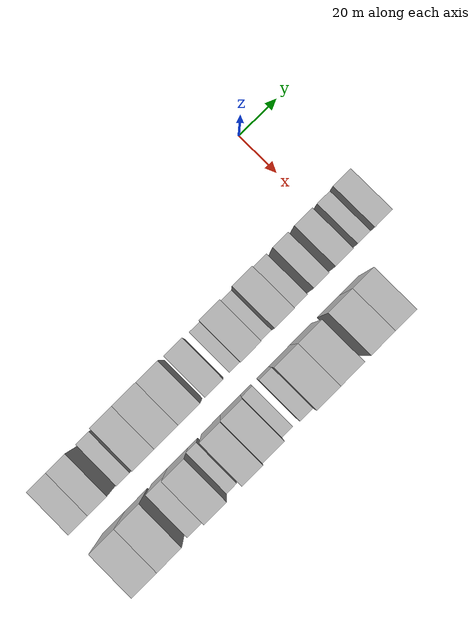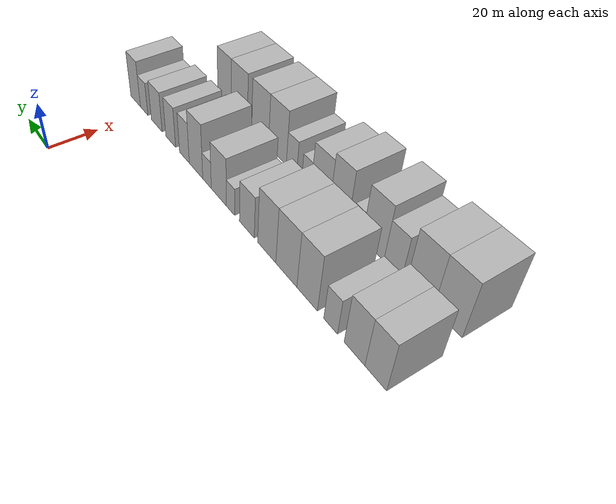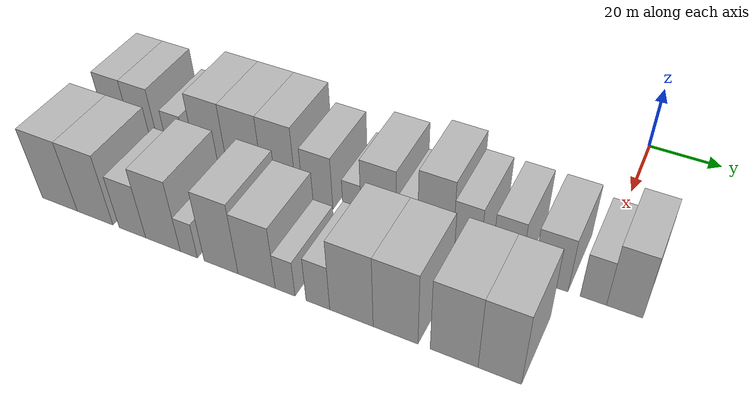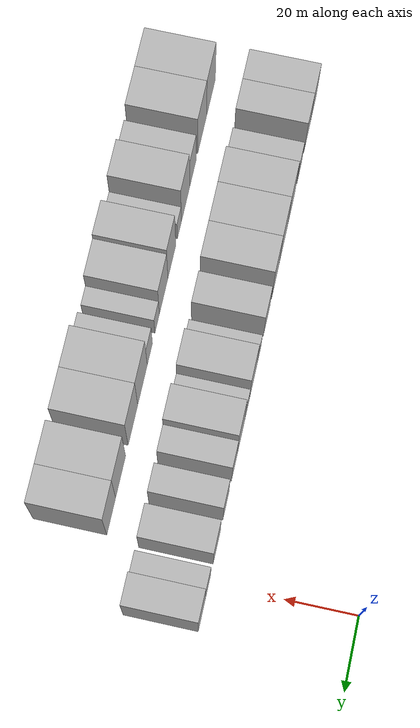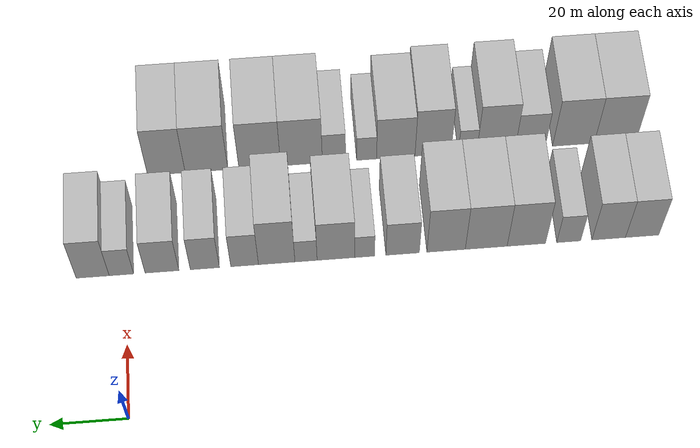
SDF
<sdf version="1.6">
 <world name="default">
  <model name="building_15">
   <static>1</static>
   <pose>50.0000 -136.8504 0 0.000000 0.000000 0.000000</pose>
   <link name="link">
    <pose>0 0 10.50 0 0 0</pose>
    <collision name="collision"><geometry><box><size>20.0000 8.9223 21.0000</size></box></geometry></collision>
    <visual name="visual">
     <cast_shadows>0</cast_shadows>
     <geometry><box><size>20.0000 8.9223 21.0000</size></box></geometry>
     <material>
      <script>
       <uri>model://HANNAS_wall/materials/scripts</uri>
       <uri>model://HANNAS_wall/materials/textures</uri>
       <name>vrc/HANNAS_wall</name>
      </script>
     </material>
    </visual>
   </link>
  </model>
  <model name="building_16">
   <static>1</static>
   <pose>50.0000 -127.8862 0 0.000000 0.000000 0.000000</pose>
   <link name="link">
    <pose>0 0 10.50 0 0 0</pose>
    <collision name="collision"><geometry><box><size>20.0000 9.0061 21.0000</size></box></geometry></collision>
    <visual name="visual">
     <cast_shadows>0</cast_shadows>
     <geometry><box><size>20.0000 9.0061 21.0000</size></box></geometry>
     <material>
      <script>
       <uri>model://HANNAS_wall/materials/scripts</uri>
       <uri>model://HANNAS_wall/materials/textures</uri>
       <name>vrc/HANNAS_wall</name>
      </script>
     </material>
    </visual>
   </link>
  </model>
  <model name="building_17">
   <static>1</static>
   <pose>50.0000 -117.1879 0 0.000000 0.000000 0.000000</pose>
   <link name="link">
    <pose>0 0 7.50 0 0 0</pose>
    <collision name="collision"><geometry><box><size>20.0000 6.3906 15.0000</size></box></geometry></collision>
    <visual name="visual">
     <cast_shadows>0</cast_shadows>
     <geometry><box><size>20.0000 6.3906 15.0000</size></box></geometry>
     <material>
      <script>
       <uri>model://HANNAS_wall/materials/scripts</uri>
       <uri>model://HANNAS_wall/materials/textures</uri>
       <name>vrc/HANNAS_wall</name>
      </script>
     </material>
    </visual>
   </link>
  </model>
  <model name="building_18">
   <static>1</static>
   <pose>50.0000 -105.8745 0 0.000000 0.000000 0.000000</pose>
   <link name="link">
    <pose>0 0 12.00 0 0 0</pose>
    <collision name="collision"><geometry><box><size>20.0000 10.2362 24.0000</size></box></geometry></collision>
    <visual name="visual">
     <cast_shadows>0</cast_shadows>
     <geometry><box><size>20.0000 10.2362 24.0000</size></box></geometry>
     <material>
      <script>
       <uri>model://HANNAS_wall/materials/scripts</uri>
       <uri>model://HANNAS_wall/materials/textures</uri>
       <name>vrc/HANNAS_wall</name>
      </script>
     </material>
    </visual>
   </link>
  </model>
  <model name="building_19">
   <static>1</static>
   <pose>50.0000 -95.1828 0 0.000000 0.000000 0.000000</pose>
   <link name="link">
    <pose>0 0 12.00 0 0 0</pose>
    <collision name="collision"><geometry><box><size>20.0000 11.1471 24.0000</size></box></geometry></collision>
    <visual name="visual">
     <cast_shadows>0</cast_shadows>
     <geometry><box><size>20.0000 11.1471 24.0000</size></box></geometry>
     <material>
      <script>
       <uri>model://HANNAS_wall/materials/scripts</uri>
       <uri>model://HANNAS_wall/materials/textures</uri>
       <name>vrc/HANNAS_wall</name>
      </script>
     </material>
    </visual>
   </link>
  </model>
  <model name="building_20">
   <static>1</static>
   <pose>50.0000 -84.5005 0 0.000000 0.000000 0.000000</pose>
   <link name="link">
    <pose>0 0 12.00 0 0 0</pose>
    <collision name="collision"><geometry><box><size>20.0000 10.2175 24.0000</size></box></geometry></collision>
    <visual name="visual">
     <cast_shadows>0</cast_shadows>
     <geometry><box><size>20.0000 10.2175 24.0000</size></box></geometry>
     <material>
      <script>
       <uri>model://HANNAS_wall/materials/scripts</uri>
       <uri>model://HANNAS_wall/materials/textures</uri>
       <name>vrc/HANNAS_wall</name>
      </script>
     </material>
    </visual>
   </link>
  </model>
  <model name="building_21">
   <static>1</static>
   <pose>50.0000 -72.9549 0 0.000000 0.000000 0.000000</pose>
   <link name="link">
    <pose>0 0 9.00 0 0 0</pose>
    <collision name="collision"><geometry><box><size>20.0000 8.8736 18.0000</size></box></geometry></collision>
    <visual name="visual">
     <cast_shadows>0</cast_shadows>
     <geometry><box><size>20.0000 8.8736 18.0000</size></box></geometry>
     <material>
      <script>
       <uri>model://HANNAS_wall/materials/scripts</uri>
       <uri>model://HANNAS_wall/materials/textures</uri>
       <name>vrc/HANNAS_wall</name>
      </script>
     </material>
    </visual>
   </link>
  </model>
  <model name="building_22">
   <static>1</static>
   <pose>50.0000 -62.8980 0 0.000000 0.000000 0.000000</pose>
   <link name="link">
    <pose>0 0 6.00 0 0 0</pose>
    <collision name="collision"><geometry><box><size>20.0000 5.2403 12.0000</size></box></geometry></collision>
    <visual name="visual">
     <cast_shadows>0</cast_shadows>
     <geometry><box><size>20.0000 5.2403 12.0000</size></box></geometry>
     <material>
      <script>
       <uri>model://HANNAS_wall/materials/scripts</uri>
       <uri>model://HANNAS_wall/materials/textures</uri>
       <name>vrc/HANNAS_wall</name>
      </script>
     </material>
    </visual>
   </link>
  </model>
  <model name="building_23">
   <static>1</static>
   <pose>50.0000 -55.2958 0 0.000000 0.000000 0.000000</pose>
   <link name="link">
    <pose>0 0 10.50 0 0 0</pose>
    <collision name="collision"><geometry><box><size>20.0000 9.9641 21.0000</size></box></geometry></collision>
    <visual name="visual">
     <cast_shadows>0</cast_shadows>
     <geometry><box><size>20.0000 9.9641 21.0000</size></box></geometry>
     <material>
      <script>
       <uri>model://HANNAS_wall/materials/scripts</uri>
       <uri>model://HANNAS_wall/materials/textures</uri>
       <name>vrc/HANNAS_wall</name>
      </script>
     </material>
    </visual>
   </link>
  </model>
  <model name="building_24">
   <static>1</static>
   <pose>50.0000 -47.3811 0 0.000000 0.000000 0.000000</pose>
   <link name="link">
    <pose>0 0 6.00 0 0 0</pose>
    <collision name="collision"><geometry><box><size>20.0000 5.8652 12.0000</size></box></geometry></collision>
    <visual name="visual">
     <cast_shadows>0</cast_shadows>
     <geometry><box><size>20.0000 5.8652 12.0000</size></box></geometry>
     <material>
      <script>
       <uri>model://HANNAS_wall/materials/scripts</uri>
       <uri>model://HANNAS_wall/materials/textures</uri>
       <name>vrc/HANNAS_wall</name>
      </script>
     </material>
    </visual>
   </link>
  </model>
  <model name="building_25">
   <static>1</static>
   <pose>50.0000 -39.6424 0 0.000000 0.000000 0.000000</pose>
   <link name="link">
    <pose>0 0 12.00 0 0 0</pose>
    <collision name="collision"><geometry><box><size>20.0000 9.6122 24.0000</size></box></geometry></collision>
    <visual name="visual">
     <cast_shadows>0</cast_shadows>
     <geometry><box><size>20.0000 9.6122 24.0000</size></box></geometry>
     <material>
      <script>
       <uri>model://HANNAS_wall/materials/scripts</uri>
       <uri>model://HANNAS_wall/materials/textures</uri>
       <name>vrc/HANNAS_wall</name>
      </script>
     </material>
    </visual>
   </link>
  </model>
  <model name="building_26">
   <static>1</static>
   <pose>50.0000 -31.1935 0 0.000000 0.000000 0.000000</pose>
   <link name="link">
    <pose>0 0 9.00 0 0 0</pose>
    <collision name="collision"><geometry><box><size>20.0000 7.2858 18.0000</size></box></geometry></collision>
    <visual name="visual">
     <cast_shadows>0</cast_shadows>
     <geometry><box><size>20.0000 7.2858 18.0000</size></box></geometry>
     <material>
      <script>
       <uri>model://HANNAS_wall/materials/scripts</uri>
       <uri>model://HANNAS_wall/materials/textures</uri>
       <name>vrc/HANNAS_wall</name>
      </script>
     </material>
    </visual>
   </link>
  </model>
  <model name="building_27">
   <static>1</static>
   <pose>50.0000 -20.7220 0 0.000000 0.000000 0.000000</pose>
   <link name="link">
    <pose>0 0 9.00 0 0 0</pose>
    <collision name="collision"><geometry><box><size>20.0000 7.6572 18.0000</size></box></geometry></collision>
    <visual name="visual">
     <cast_shadows>0</cast_shadows>
     <geometry><box><size>20.0000 7.6572 18.0000</size></box></geometry>
     <material>
      <script>
       <uri>model://HANNAS_wall/materials/scripts</uri>
       <uri>model://HANNAS_wall/materials/textures</uri>
       <name>vrc/HANNAS_wall</name>
      </script>
     </material>
    </visual>
   </link>
  </model>
  <model name="building_28">
   <static>1</static>
   <pose>50.0000 -9.4502 0 0.000000 0.000000 0.000000</pose>
   <link name="link">
    <pose>0 0 9.00 0 0 0</pose>
    <collision name="collision"><geometry><box><size>20.0000 8.8863 18.0000</size></box></geometry></collision>
    <visual name="visual">
     <cast_shadows>0</cast_shadows>
     <geometry><box><size>20.0000 8.8863 18.0000</size></box></geometry>
     <material>
      <script>
       <uri>model://HANNAS_wall/materials/scripts</uri>
       <uri>model://HANNAS_wall/materials/textures</uri>
       <name>vrc/HANNAS_wall</name>
      </script>
     </material>
    </visual>
   </link>
  </model>
  <model name="building_29">
   <static>1</static>
   <pose>50.0000 1.1949 0 0.000000 0.000000 0.000000</pose>
   <link name="link">
    <pose>0 0 7.50 0 0 0</pose>
    <collision name="collision"><geometry><box><size>20.0000 6.4039 15.0000</size></box></geometry></collision>
    <visual name="visual">
     <cast_shadows>0</cast_shadows>
     <geometry><box><size>20.0000 6.4039 15.0000</size></box></geometry>
     <material>
      <script>
       <uri>model://HANNAS_wall/materials/scripts</uri>
       <uri>model://HANNAS_wall/materials/textures</uri>
       <name>vrc/HANNAS_wall</name>
      </script>
     </material>
    </visual>
   </link>
  </model>
  <model name="building_30">
   <static>1</static>
   <pose>50.0000 8.7194 0 0.000000 0.000000 0.000000</pose>
   <link name="link">
    <pose>0 0 10.50 0 0 0</pose>
    <collision name="collision"><geometry><box><size>20.0000 8.6451 21.0000</size></box></geometry></collision>
    <visual name="visual">
     <cast_shadows>0</cast_shadows>
     <geometry><box><size>20.0000 8.6451 21.0000</size></box></geometry>
     <material>
      <script>
       <uri>model://HANNAS_wall/materials/scripts</uri>
       <uri>model://HANNAS_wall/materials/textures</uri>
       <name>vrc/HANNAS_wall</name>
      </script>
     </material>
    </visual>
   </link>
  </model>
  <model name="building_77">
   <static>1</static>
   <pose>79.0000 -134.0732 0 0.000000 0.000000 0.000000</pose>
   <link name="link">
    <pose>0 0 12.00 0 0 0</pose>
    <collision name="collision"><geometry><box><size>20.0000 11.5784 24.0000</size></box></geometry></collision>
    <visual name="visual">
     <cast_shadows>0</cast_shadows>
     <geometry><box><size>20.0000 11.5784 24.0000</size></box></geometry>
     <material>
      <script>
       <uri>model://HANNAS_wall/materials/scripts</uri>
       <uri>model://HANNAS_wall/materials/textures</uri>
       <name>vrc/HANNAS_wall</name>
      </script>
     </material>
    </visual>
   </link>
  </model>
  <model name="building_78">
   <static>1</static>
   <pose>79.0000 -122.5423 0 0.000000 0.000000 0.000000</pose>
   <link name="link">
    <pose>0 0 12.00 0 0 0</pose>
    <collision name="collision"><geometry><box><size>20.0000 11.4833 24.0000</size></box></geometry></collision>
    <visual name="visual">
     <cast_shadows>0</cast_shadows>
     <geometry><box><size>20.0000 11.4833 24.0000</size></box></geometry>
     <material>
      <script>
       <uri>model://HANNAS_wall/materials/scripts</uri>
       <uri>model://HANNAS_wall/materials/textures</uri>
       <name>vrc/HANNAS_wall</name>
      </script>
     </material>
    </visual>
   </link>
  </model>
  <model name="building_79">
   <static>1</static>
   <pose>79.0000 -110.6660 0 0.000000 0.000000 0.000000</pose>
   <link name="link">
    <pose>0 0 9.00 0 0 0</pose>
    <collision name="collision"><geometry><box><size>20.0000 8.2694 18.0000</size></box></geometry></collision>
    <visual name="visual">
     <cast_shadows>0</cast_shadows>
     <geometry><box><size>20.0000 8.2694 18.0000</size></box></geometry>
     <material>
      <script>
       <uri>model://HANNAS_wall/materials/scripts</uri>
       <uri>model://HANNAS_wall/materials/textures</uri>
       <name>vrc/HANNAS_wall</name>
      </script>
     </material>
    </visual>
   </link>
  </model>
  <model name="building_80">
   <static>1</static>
   <pose>79.0000 -101.2624 0 0.000000 0.000000 0.000000</pose>
   <link name="link">
    <pose>0 0 12.00 0 0 0</pose>
    <collision name="collision"><geometry><box><size>20.0000 10.5377 24.0000</size></box></geometry></collision>
    <visual name="visual">
     <cast_shadows>0</cast_shadows>
     <geometry><box><size>20.0000 10.5377 24.0000</size></box></geometry>
     <material>
      <script>
       <uri>model://HANNAS_wall/materials/scripts</uri>
       <uri>model://HANNAS_wall/materials/textures</uri>
       <name>vrc/HANNAS_wall</name>
      </script>
     </material>
    </visual>
   </link>
  </model>
  <model name="building_81">
   <static>1</static>
   <pose>79.0000 -93.4515 0 0.000000 0.000000 0.000000</pose>
   <link name="link">
    <pose>0 0 6.00 0 0 0</pose>
    <collision name="collision"><geometry><box><size>20.0000 5.0841 12.0000</size></box></geometry></collision>
    <visual name="visual">
     <cast_shadows>0</cast_shadows>
     <geometry><box><size>20.0000 5.0841 12.0000</size></box></geometry>
     <material>
      <script>
       <uri>model://HANNAS_wall/materials/scripts</uri>
       <uri>model://HANNAS_wall/materials/textures</uri>
       <name>vrc/HANNAS_wall</name>
      </script>
     </material>
    </visual>
   </link>
  </model>
  <model name="building_82">
   <static>1</static>
   <pose>79.0000 -83.9888 0 0.000000 0.000000 0.000000</pose>
   <link name="link">
    <pose>0 0 12.00 0 0 0</pose>
    <collision name="collision"><geometry><box><size>20.0000 9.8413 24.0000</size></box></geometry></collision>
    <visual name="visual">
     <cast_shadows>0</cast_shadows>
     <geometry><box><size>20.0000 9.8413 24.0000</size></box></geometry>
     <material>
      <script>
       <uri>model://HANNAS_wall/materials/scripts</uri>
       <uri>model://HANNAS_wall/materials/textures</uri>
       <name>vrc/HANNAS_wall</name>
      </script>
     </material>
    </visual>
   </link>
  </model>
  <model name="building_83">
   <static>1</static>
   <pose>79.0000 -73.8246 0 0.000000 0.000000 0.000000</pose>
   <link name="link">
    <pose>0 0 10.50 0 0 0</pose>
    <collision name="collision"><geometry><box><size>20.0000 10.4871 21.0000</size></box></geometry></collision>
    <visual name="visual">
     <cast_shadows>0</cast_shadows>
     <geometry><box><size>20.0000 10.4871 21.0000</size></box></geometry>
     <material>
      <script>
       <uri>model://HANNAS_wall/materials/scripts</uri>
       <uri>model://HANNAS_wall/materials/textures</uri>
       <name>vrc/HANNAS_wall</name>
      </script>
     </material>
    </visual>
   </link>
  </model>
  <model name="building_84">
   <static>1</static>
   <pose>79.0000 -65.8677 0 0.000000 0.000000 0.000000</pose>
   <link name="link">
    <pose>0 0 6.00 0 0 0</pose>
    <collision name="collision"><geometry><box><size>20.0000 5.4267 12.0000</size></box></geometry></collision>
    <visual name="visual">
     <cast_shadows>0</cast_shadows>
     <geometry><box><size>20.0000 5.4267 12.0000</size></box></geometry>
     <material>
      <script>
       <uri>model://HANNAS_wall/materials/scripts</uri>
       <uri>model://HANNAS_wall/materials/textures</uri>
       <name>vrc/HANNAS_wall</name>
      </script>
     </material>
    </visual>
   </link>
  </model>
  <model name="building_85">
   <static>1</static>
   <pose>79.0000 -56.9861 0 0.000000 0.000000 0.000000</pose>
   <link name="link">
    <pose>0 0 7.50 0 0 0</pose>
    <collision name="collision"><geometry><box><size>20.0000 6.3366 15.0000</size></box></geometry></collision>
    <visual name="visual">
     <cast_shadows>0</cast_shadows>
     <geometry><box><size>20.0000 6.3366 15.0000</size></box></geometry>
     <material>
      <script>
       <uri>model://HANNAS_wall/materials/scripts</uri>
       <uri>model://HANNAS_wall/materials/textures</uri>
       <name>vrc/HANNAS_wall</name>
      </script>
     </material>
    </visual>
   </link>
  </model>
  <model name="building_86">
   <static>1</static>
   <pose>79.0000 -48.1402 0 0.000000 0.000000 0.000000</pose>
   <link name="link">
    <pose>0 0 12.00 0 0 0</pose>
    <collision name="collision"><geometry><box><size>20.0000 11.3552 24.0000</size></box></geometry></collision>
    <visual name="visual">
     <cast_shadows>0</cast_shadows>
     <geometry><box><size>20.0000 11.3552 24.0000</size></box></geometry>
     <material>
      <script>
       <uri>model://HANNAS_wall/materials/scripts</uri>
       <uri>model://HANNAS_wall/materials/textures</uri>
       <name>vrc/HANNAS_wall</name>
      </script>
     </material>
    </visual>
   </link>
  </model>
  <model name="building_87">
   <static>1</static>
   <pose>79.0000 -36.8027 0 0.000000 0.000000 0.000000</pose>
   <link name="link">
    <pose>0 0 12.00 0 0 0</pose>
    <collision name="collision"><geometry><box><size>20.0000 11.3198 24.0000</size></box></geometry></collision>
    <visual name="visual">
     <cast_shadows>0</cast_shadows>
     <geometry><box><size>20.0000 11.3198 24.0000</size></box></geometry>
     <material>
      <script>
       <uri>model://HANNAS_wall/materials/scripts</uri>
       <uri>model://HANNAS_wall/materials/textures</uri>
       <name>vrc/HANNAS_wall</name>
      </script>
     </material>
    </visual>
   </link>
  </model>
  <model name="building_88">
   <static>1</static>
   <pose>79.0000 -22.3580 0 0.000000 0.000000 0.000000</pose>
   <link name="link">
    <pose>0 0 12.00 0 0 0</pose>
    <collision name="collision"><geometry><box><size>20.0000 11.5696 24.0000</size></box></geometry></collision>
    <visual name="visual">
     <cast_shadows>0</cast_shadows>
     <geometry><box><size>20.0000 11.5696 24.0000</size></box></geometry>
     <material>
      <script>
       <uri>model://HANNAS_wall/materials/scripts</uri>
       <uri>model://HANNAS_wall/materials/textures</uri>
       <name>vrc/HANNAS_wall</name>
      </script>
     </material>
    </visual>
   </link>
  </model>
  <model name="building_89">
   <static>1</static>
   <pose>79.0000 -11.4908 0 0.000000 0.000000 0.000000</pose>
   <link name="link">
    <pose>0 0 12.00 0 0 0</pose>
    <collision name="collision"><geometry><box><size>20.0000 10.1650 24.0000</size></box></geometry></collision>
    <visual name="visual">
     <cast_shadows>0</cast_shadows>
     <geometry><box><size>20.0000 10.1650 24.0000</size></box></geometry>
     <material>
      <script>
       <uri>model://HANNAS_wall/materials/scripts</uri>
       <uri>model://HANNAS_wall/materials/textures</uri>
       <name>vrc/HANNAS_wall</name>
      </script>
     </material>
    </visual>
   </link>
  </model>
 </world>
</sdf>
